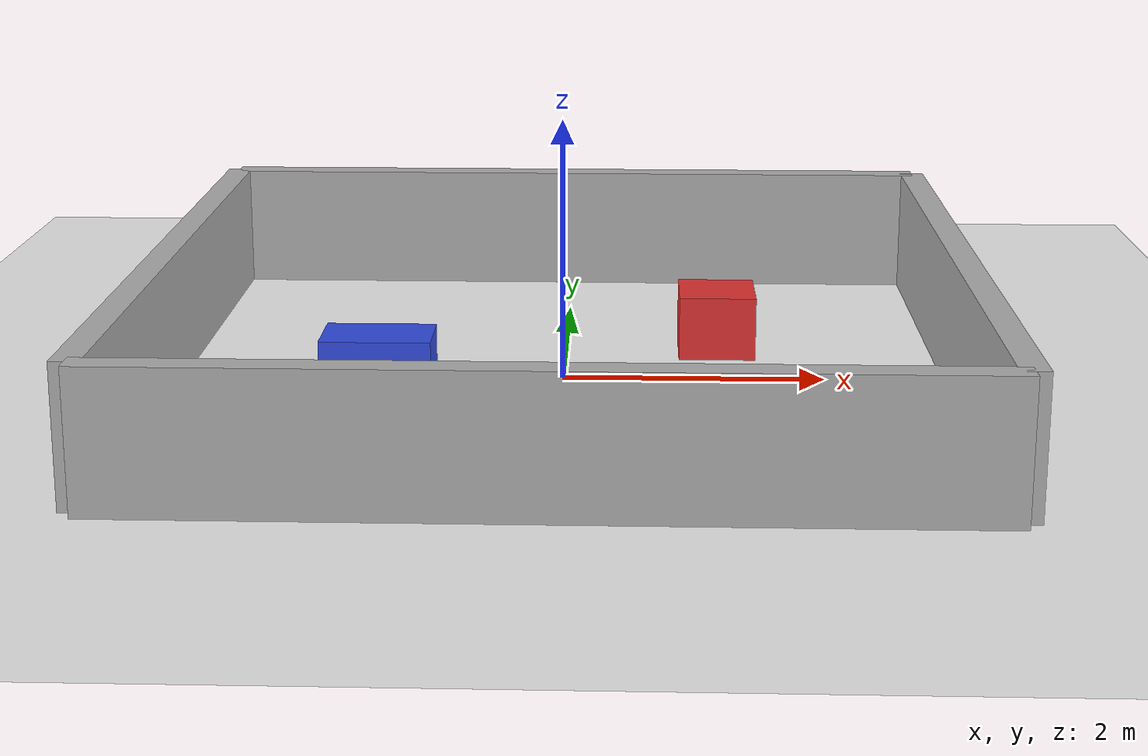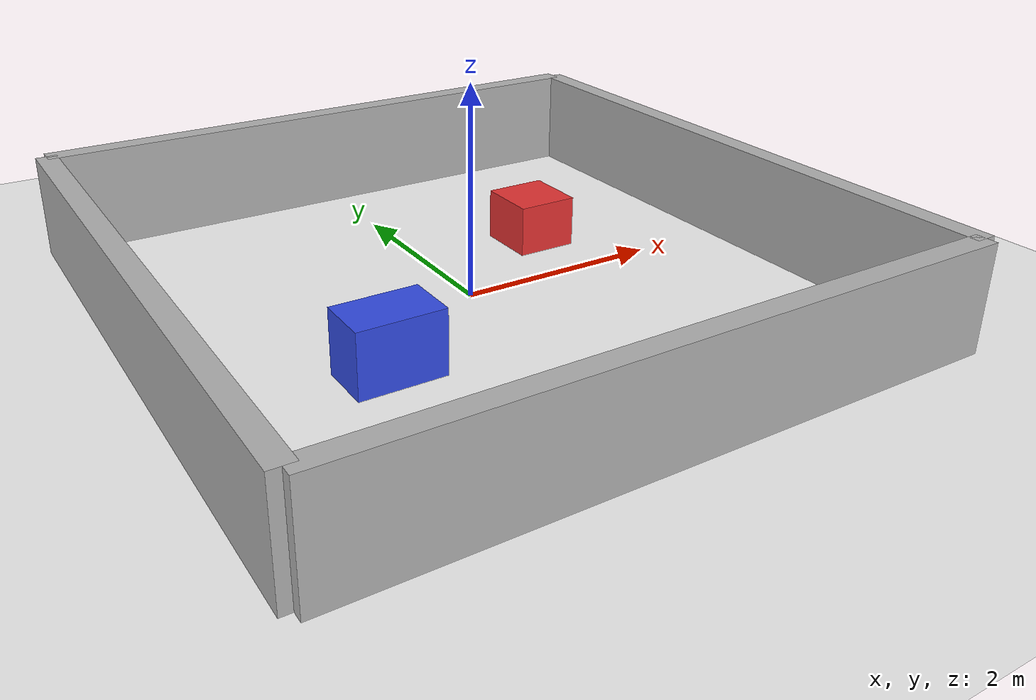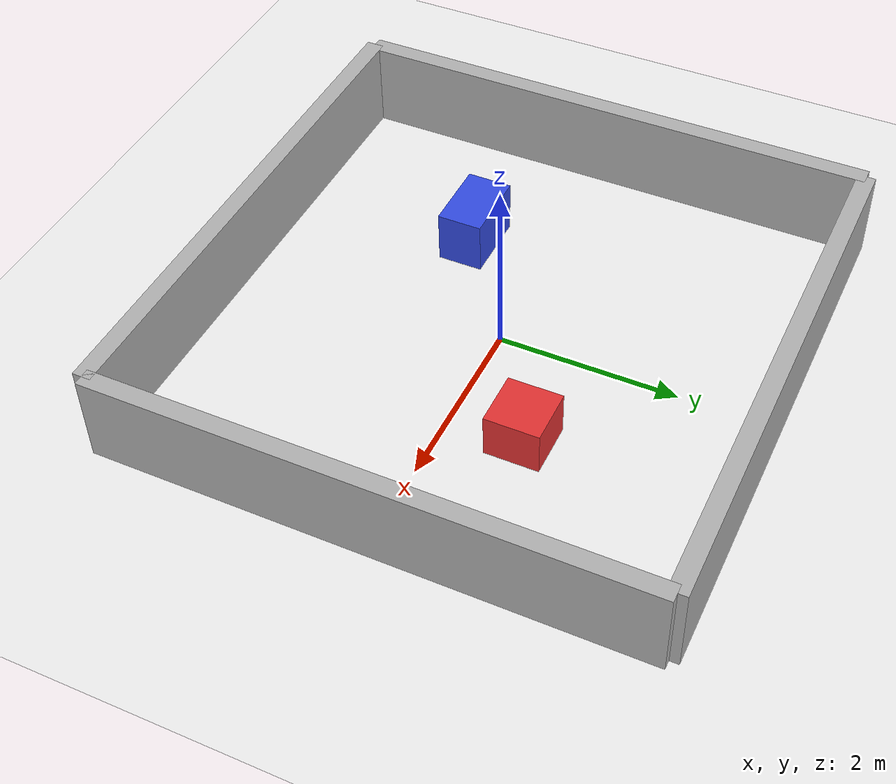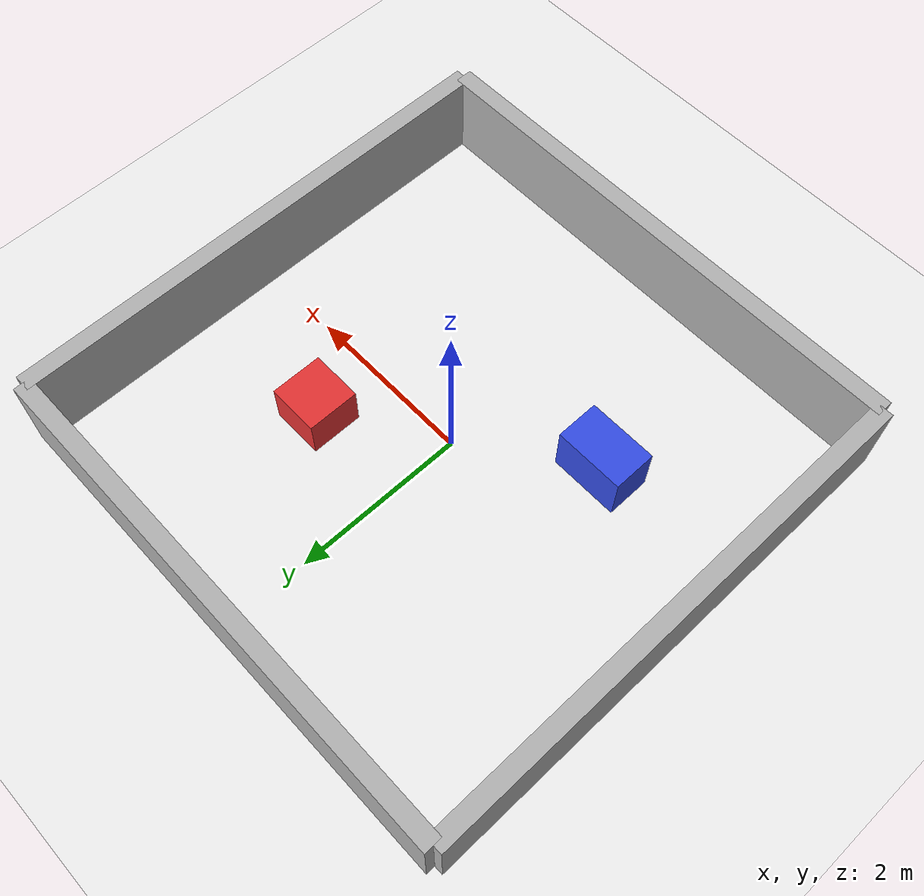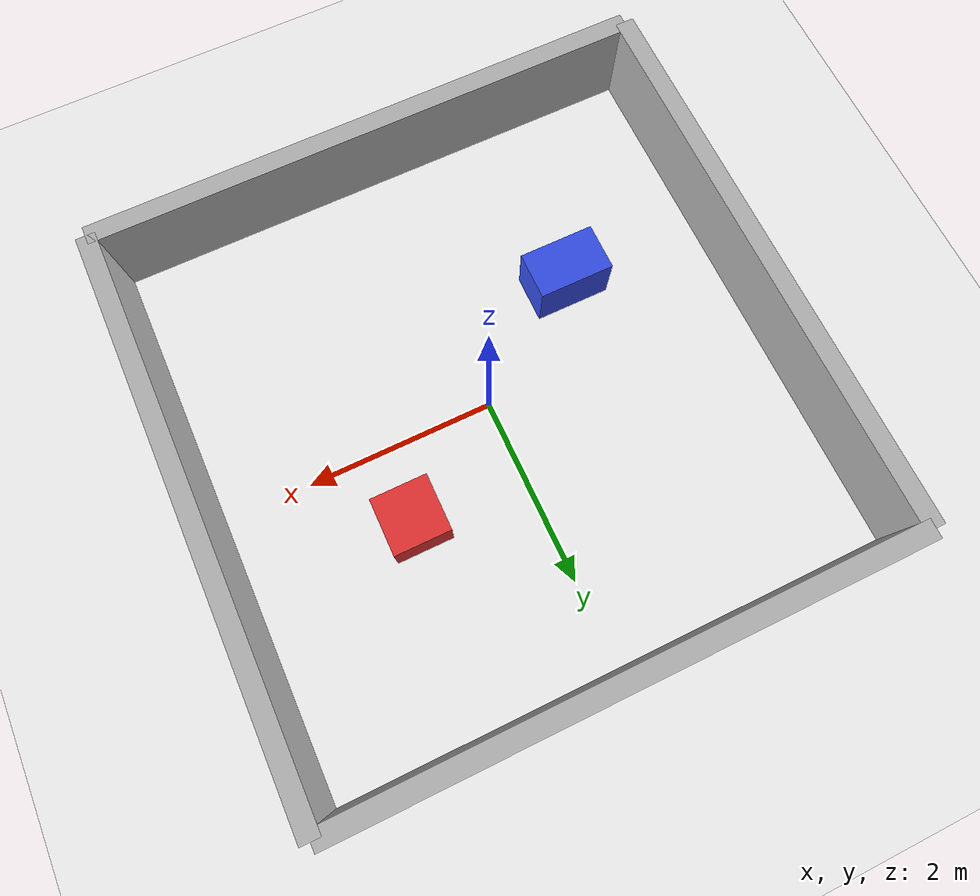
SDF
<?xml version="1.0" ?>
<sdf version="1.9">
  <world name="course_world">
    <gravity>0 0 -9.8</gravity>

    <plugin
      filename="gz-sim-physics-system"
      name="gz::sim::systems::Physics"/>
    <plugin
      filename="gz-sim-user-commands-system"
      name="gz::sim::systems::UserCommands"/>
    <plugin
      filename="gz-sim-scene-broadcaster-system"
      name="gz::sim::systems::SceneBroadcaster"/>

    <light type="directional" name="sun">
      <cast_shadows>true</cast_shadows>
      <pose>0 0 10 0 0 0</pose>
      <diffuse>0.8 0.8 0.8 1</diffuse>
      <specular>0.2 0.2 0.2 1</specular>
      <attenuation>
        <range>1000</range>
        <constant>0.9</constant>
        <linear>0.01</linear>
        <quadratic>0.001</quadratic>
      </attenuation>
      <direction>-0.5 0.2 -1</direction>
    </light>

    <model name="ground_plane">
      <static>true</static>
      <link name="link">
        <collision name="collision">
          <geometry>
            <plane>
              <normal>0 0 1</normal>
              <size>20 20</size>
            </plane>
          </geometry>
        </collision>
        <visual name="visual">
          <geometry>
            <plane>
              <normal>0 0 1</normal>
              <size>20 20</size>
            </plane>
          </geometry>
          <material>
            <ambient>0.95 0.95 0.95 1</ambient>
            <diffuse>0.95 0.95 0.95 1</diffuse>
          </material>
        </visual>
      </link>
    </model>

    <!-- Simple rectangular cage walls -->
    <model name="wall_north">
      <static>true</static>
      <pose>0 3 0.5 0 0 0</pose>
      <link name="link">
        <collision name="collision">
          <geometry>
            <box><size>6 0.2 1</size></box>
          </geometry>
        </collision>
        <visual name="visual">
          <geometry>
            <box><size>6 0.2 1</size></box>
          </geometry>
          <material><ambient>0.7 0.7 0.7 1</ambient></material>
        </visual>
      </link>
    </model>

    <model name="wall_south">
      <static>true</static>
      <pose>0 -3 0.5 0 0 0</pose>
      <link name="link">
        <collision name="collision">
          <geometry>
            <box><size>6 0.2 1</size></box>
          </geometry>
        </collision>
        <visual name="visual">
          <geometry>
            <box><size>6 0.2 1</size></box>
          </geometry>
          <material><ambient>0.7 0.7 0.7 1</ambient></material>
        </visual>
      </link>
    </model>

    <model name="wall_east">
      <static>true</static>
      <pose>3 0 0.5 0 0 0</pose>
      <link name="link">
        <collision name="collision">
          <geometry>
            <box><size>0.2 6 1</size></box>
          </geometry>
        </collision>
        <visual name="visual">
          <geometry>
            <box><size>0.2 6 1</size></box>
          </geometry>
          <material><ambient>0.7 0.7 0.7 1</ambient></material>
        </visual>
      </link>
    </model>

    <model name="wall_west">
      <static>true</static>
      <pose>-3 0 0.5 0 0 0</pose>
      <link name="link">
        <collision name="collision">
          <geometry>
            <box><size>0.2 6 1</size></box>
          </geometry>
        </collision>
        <visual name="visual">
          <geometry>
            <box><size>0.2 6 1</size></box>
          </geometry>
          <material><ambient>0.7 0.7 0.7 1</ambient></material>
        </visual>
      </link>
    </model>

    <!-- Obstacle 1 -->
    <model name="obstacle_box_1">
      <static>true</static>
      <pose>1.2 0.8 0.25 0 0 0</pose>
      <link name="link">
        <collision name="collision">
          <geometry>
            <box><size>0.6 0.6 0.5</size></box>
          </geometry>
        </collision>
        <visual name="visual">
          <geometry>
            <box><size>0.6 0.6 0.5</size></box>
          </geometry>
          <material><ambient>0.9 0.2 0.2 1</ambient></material>
        </visual>
      </link>
    </model>

    <!-- Obstacle 2 -->
    <model name="obstacle_box_2">
      <static>true</static>
      <pose>-1.3 -0.9 0.3 0 0 0</pose>
      <link name="link">
        <collision name="collision">
          <geometry>
            <box><size>0.8 0.5 0.6</size></box>
          </geometry>
        </collision>
        <visual name="visual">
          <geometry>
            <box><size>0.8 0.5 0.6</size></box>
          </geometry>
          <material><ambient>0.2 0.3 0.9 1</ambient></material>
        </visual>
      </link>
    </model>

  </world>
</sdf>
